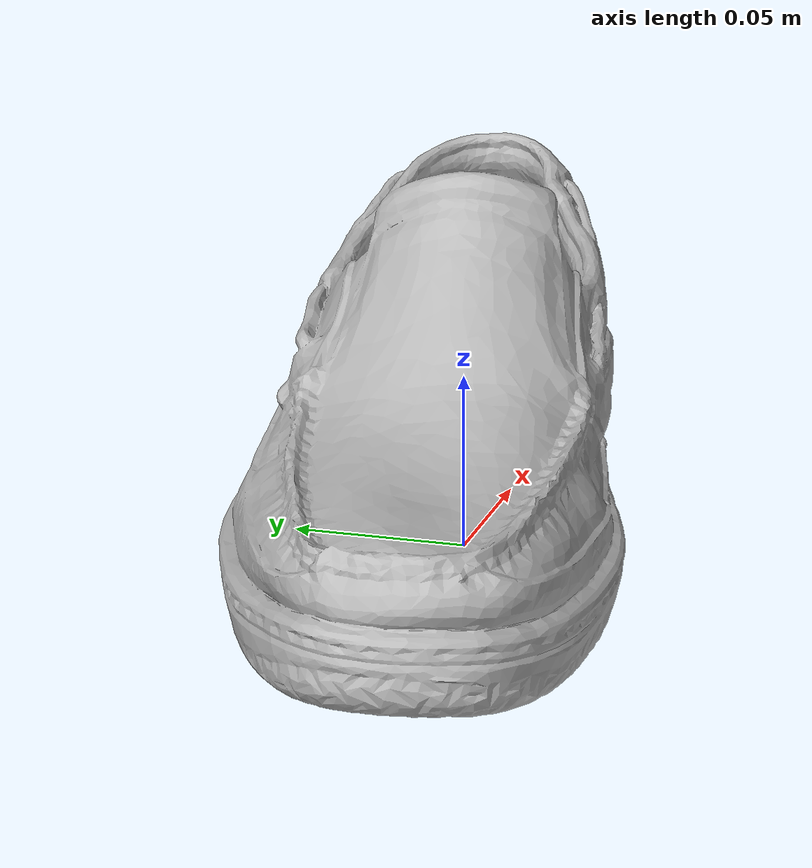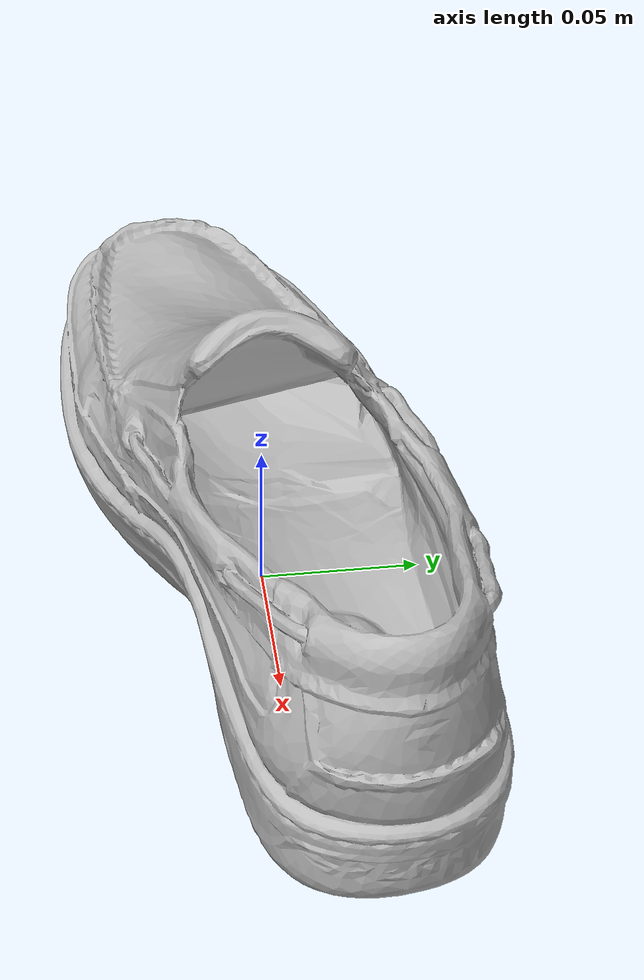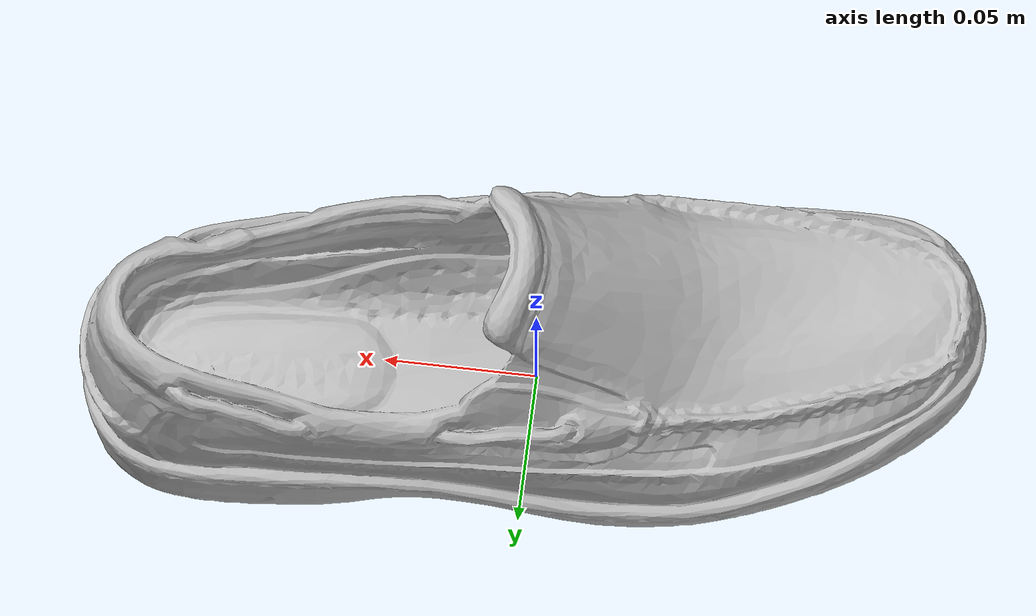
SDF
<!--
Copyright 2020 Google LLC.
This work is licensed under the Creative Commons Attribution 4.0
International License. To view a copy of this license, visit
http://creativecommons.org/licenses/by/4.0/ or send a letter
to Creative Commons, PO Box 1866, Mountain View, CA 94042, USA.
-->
<?xml version="1.0" ?>
<sdf version="1.6">
  <model name="Mens_Billfish_Slip_On_in_Coffee_e8bPKE9Lfgo">
    <link name="link_0">
      <visual name="visual">
        <geometry>
          <mesh>
            <uri>meshes/model.obj</uri>
          </mesh>
        </geometry>
      </visual>
      <collision name="collision_0">
        <geometry>
          <mesh>
            <uri>meshes/model.obj</uri>
          </mesh>
        </geometry>
      </collision>
    </link>
  </model>
</sdf>
